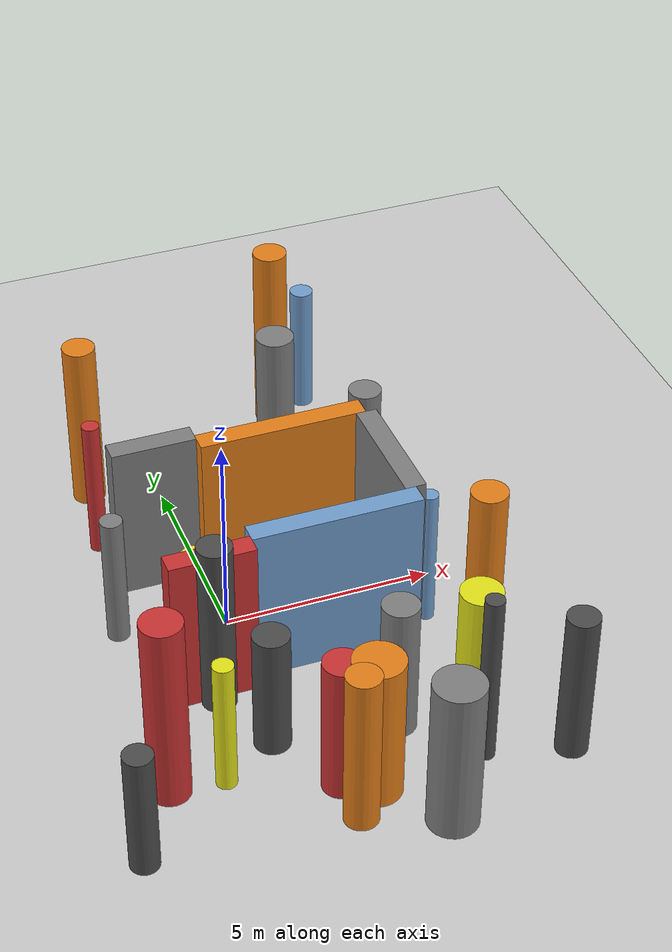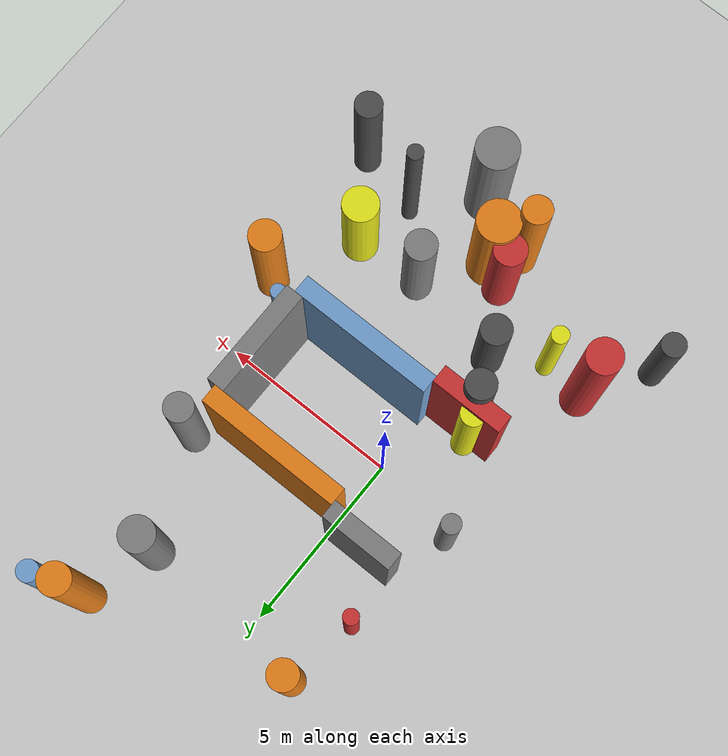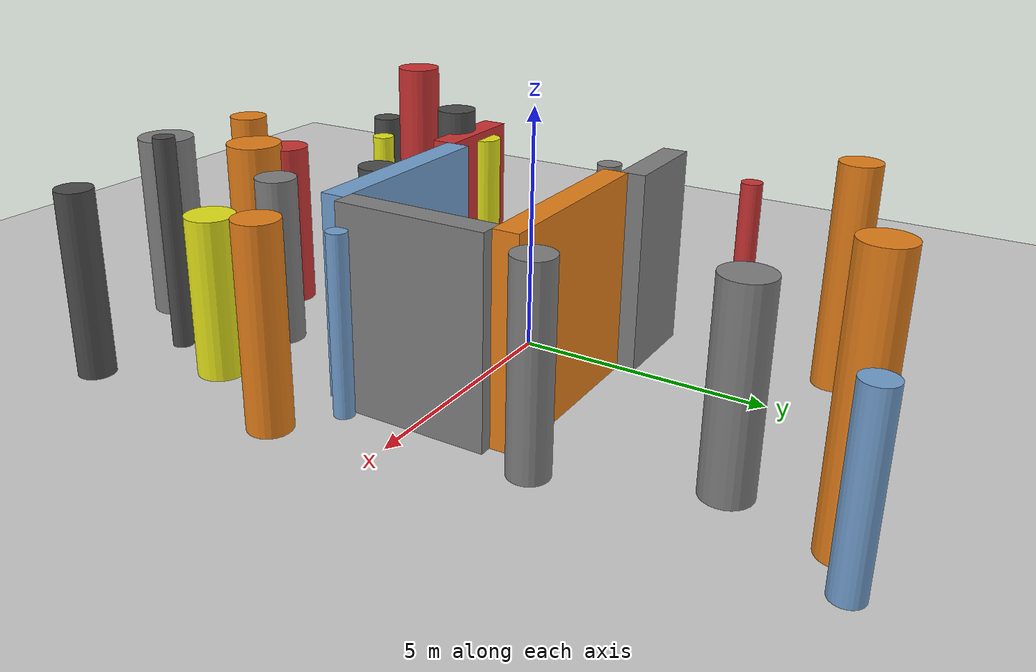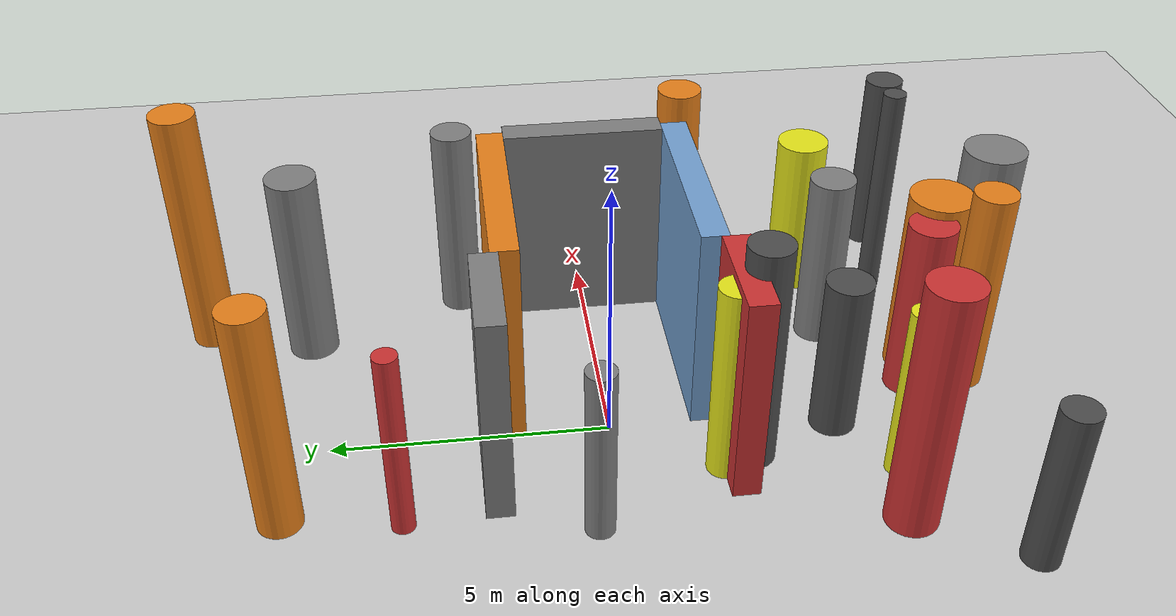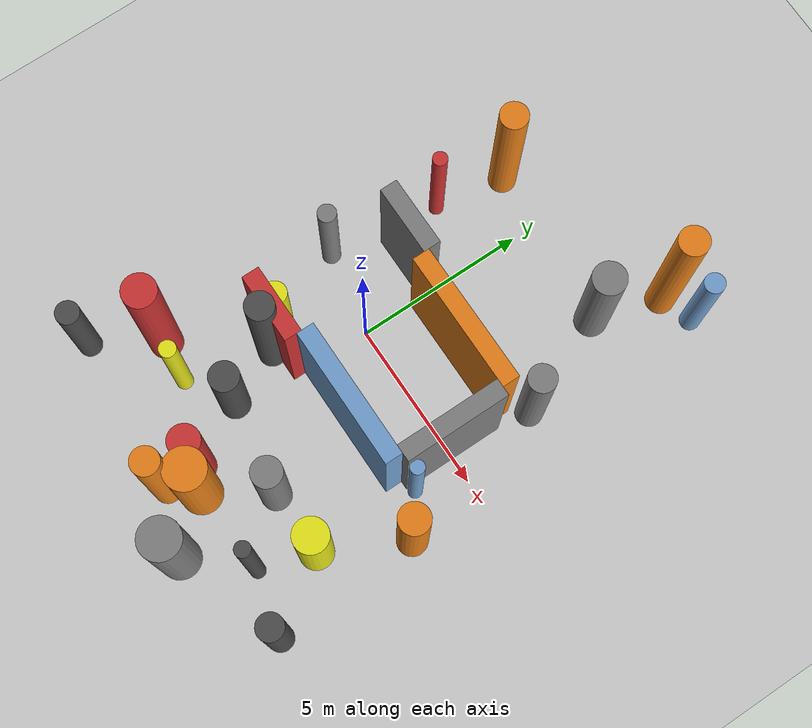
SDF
<?xml version='1.0'?>
<sdf version='1.6'>
  <world name='routeA_rl_v1__dense_recovery__rl_train__cul_de_sac_trap__000033'>
    <!-- Sun light -->
    <light name='sun' type='directional'>
      <cast_shadows>1</cast_shadows>
      <pose>0 0 10 0 0 0</pose>
      <diffuse>0.8 0.8 0.8 1</diffuse>
      <specular>0.2 0.2 0.2 1</specular>
      <attenuation>
        <range>1000</range>
        <constant>0.9</constant>
        <linear>0.01</linear>
        <quadratic>0.001</quadratic>
      </attenuation>
      <direction>-0.5 0.1 -0.9</direction>
    </light>

    <!-- Ground plane -->
    <model name='ground_plane'>
      <static>1</static>
      <link name='link'>
        <collision name='collision'>
          <geometry>
            <plane>
              <normal>0 0 1</normal>
              <size>100 100</size>
            </plane>
          </geometry>
          <surface>
            <contact>
              <collide_bitmask>65535</collide_bitmask>
              <ode/>
            </contact>
            <friction>
              <ode>
                <mu>100</mu>
                <mu2>50</mu2>
              </ode>
              <torsional><ode/></torsional>
            </friction>
            <bounce/>
          </surface>
          <max_contacts>10</max_contacts>
        </collision>
        <visual name='visual'>
          <cast_shadows>0</cast_shadows>
          <geometry>
            <plane>
              <normal>0 0 1</normal>
              <size>100 100</size>
            </plane>
          </geometry>
          <material>
            <script>
              <uri>file://media/materials/scripts/gazebo.material</uri>
              <n>Gazebo/Grey</n>
            </script>
          </material>
        </visual>
      </link>
    </model>

    <!-- Environment -->
    <magnetic_field>6e-06 2.3e-05 -4.2e-05</magnetic_field>
    <atmosphere type='adiabatic'/>
    <physics name='default_physics' default='0' type='ode'>
      <gravity>0 0 -9.8</gravity>
      <max_step_size>0.004</max_step_size>
      <real_time_factor>1</real_time_factor>
      <real_time_update_rate>250</real_time_update_rate>
    </physics>
    <scene>
      <ambient>0.4 0.4 0.4 1</ambient>
      <background>0.7 0.7 0.7 1</background>
      <shadows>1</shadows>
    </scene>
    <wind/>
    <spherical_coordinates>
      <surface_model>EARTH_WGS84</surface_model>
      <latitude_deg>0</latitude_deg>
      <longitude_deg>0</longitude_deg>
      <elevation>0</elevation>
      <heading_deg>0</heading_deg>
    </spherical_coordinates>

    <!-- ============ OBSTACLES (28) ============ -->
    <model name='trap_side_l'>
      <static>1</static>
      <link name='link'>
        <visual name='visual'>
          <geometry>
            <box>
              <size>4.0000 0.5000 4.0000</size>
            </box>
          </geometry>
          <material>
            <script>
              <n>Gazebo/Blue</n>
              <uri>file://media/materials/scripts/gazebo.material</uri>
            </script>
            <ambient>0.447 0.624 0.812 1</ambient>
          </material>
        </visual>
        <collision name='collision'>
          <geometry>
            <box>
              <size>4.0000 0.5000 4.0000</size>
            </box>
          </geometry>
          <max_contacts>10</max_contacts>
          <surface>
            <contact><ode/></contact>
            <bounce/>
            <friction>
              <ode><mu>1</mu><mu2>1</mu2></ode>
              <torsional><ode/></torsional>
            </friction>
          </surface>
        </collision>
      </link>
      <pose>2.0000 -1.7500 2.0000 0 0 0.0000</pose>
    </model>

    <model name='trap_side_r'>
      <static>1</static>
      <link name='link'>
        <visual name='visual'>
          <geometry>
            <box>
              <size>4.0000 0.5000 4.0000</size>
            </box>
          </geometry>
          <material>
            <script>
              <n>Gazebo/Orange</n>
              <uri>file://media/materials/scripts/gazebo.material</uri>
            </script>
            <ambient>0.9 0.5 0.1 1</ambient>
          </material>
        </visual>
        <collision name='collision'>
          <geometry>
            <box>
              <size>4.0000 0.5000 4.0000</size>
            </box>
          </geometry>
          <max_contacts>10</max_contacts>
          <surface>
            <contact><ode/></contact>
            <bounce/>
            <friction>
              <ode><mu>1</mu><mu2>1</mu2></ode>
              <torsional><ode/></torsional>
            </friction>
          </surface>
        </collision>
      </link>
      <pose>2.0000 1.7500 2.0000 0 0 0.0000</pose>
    </model>

    <model name='trap_back'>
      <static>1</static>
      <link name='link'>
        <visual name='visual'>
          <geometry>
            <box>
              <size>0.5000 3.0000 4.0000</size>
            </box>
          </geometry>
          <material>
            <script>
              <n>Gazebo/Grey</n>
              <uri>file://media/materials/scripts/gazebo.material</uri>
            </script>
            <ambient>0.5 0.5 0.5 1</ambient>
          </material>
        </visual>
        <collision name='collision'>
          <geometry>
            <box>
              <size>0.5000 3.0000 4.0000</size>
            </box>
          </geometry>
          <max_contacts>10</max_contacts>
          <surface>
            <contact><ode/></contact>
            <bounce/>
            <friction>
              <ode><mu>1</mu><mu2>1</mu2></ode>
              <torsional><ode/></torsional>
            </friction>
          </surface>
        </collision>
      </link>
      <pose>4.0000 0.0000 2.0000 0 0 0.0000</pose>
    </model>

    <model name='trap_funnel_l'>
      <static>1</static>
      <link name='link'>
        <visual name='visual'>
          <geometry>
            <box>
              <size>2.0000 0.5000 4.0000</size>
            </box>
          </geometry>
          <material>
            <script>
              <n>Gazebo/Red</n>
              <uri>file://media/materials/scripts/gazebo.material</uri>
            </script>
            <ambient>0.8 0.2 0.2 1</ambient>
          </material>
        </visual>
        <collision name='collision'>
          <geometry>
            <box>
              <size>2.0000 0.5000 4.0000</size>
            </box>
          </geometry>
          <max_contacts>10</max_contacts>
          <surface>
            <contact><ode/></contact>
            <bounce/>
            <friction>
              <ode><mu>1</mu><mu2>1</mu2></ode>
              <torsional><ode/></torsional>
            </friction>
          </surface>
        </collision>
      </link>
      <pose>-1.0000 -2.1000 2.0000 0 0 0.0000</pose>
    </model>

    <model name='trap_funnel_r'>
      <static>1</static>
      <link name='link'>
        <visual name='visual'>
          <geometry>
            <box>
              <size>2.0000 0.5000 4.0000</size>
            </box>
          </geometry>
          <material>
            <script>
              <n>Gazebo/Grey</n>
              <uri>file://media/materials/scripts/gazebo.material</uri>
            </script>
            <ambient>0.5 0.5 0.5 1</ambient>
          </material>
        </visual>
        <collision name='collision'>
          <geometry>
            <box>
              <size>2.0000 0.5000 4.0000</size>
            </box>
          </geometry>
          <max_contacts>10</max_contacts>
          <surface>
            <contact><ode/></contact>
            <bounce/>
            <friction>
              <ode><mu>1</mu><mu2>1</mu2></ode>
              <torsional><ode/></torsional>
            </friction>
          </surface>
        </collision>
      </link>
      <pose>-1.0000 2.1000 2.0000 0 0 0.0000</pose>
    </model>

    <model name='trap_scatter_0'>
      <static>1</static>
      <link name='link'>
        <visual name='visual'>
          <geometry>
            <cylinder>
              <radius>0.2383</radius>
              <length>3.3744</length>
            </cylinder>
          </geometry>
          <material>
            <script>
              <n>Gazebo/Yellow</n>
              <uri>file://media/materials/scripts/gazebo.material</uri>
            </script>
            <ambient>0.9 0.9 0.1 1</ambient>
          </material>
        </visual>
        <collision name='collision'>
          <geometry>
            <cylinder>
              <radius>0.2383</radius>
              <length>3.3744</length>
            </cylinder>
          </geometry>
          <max_contacts>10</max_contacts>
          <surface>
            <contact><ode/></contact>
            <bounce/>
            <friction>
              <ode><mu>1</mu><mu2>1</mu2></ode>
              <torsional><ode/></torsional>
            </friction>
          </surface>
        </collision>
      </link>
      <pose>-1.6503 -4.8730 1.6872 0 0 0.0000</pose>
    </model>

    <model name='trap_scatter_1'>
      <static>1</static>
      <link name='link'>
        <visual name='visual'>
          <geometry>
            <cylinder>
              <radius>0.5872</radius>
              <length>3.6845</length>
            </cylinder>
          </geometry>
          <material>
            <script>
              <n>Gazebo/Orange</n>
              <uri>file://media/materials/scripts/gazebo.material</uri>
            </script>
            <ambient>0.9 0.5 0.1 1</ambient>
          </material>
        </visual>
        <collision name='collision'>
          <geometry>
            <cylinder>
              <radius>0.5872</radius>
              <length>3.6845</length>
            </cylinder>
          </geometry>
          <max_contacts>10</max_contacts>
          <surface>
            <contact><ode/></contact>
            <bounce/>
            <friction>
              <ode><mu>1</mu><mu2>1</mu2></ode>
              <torsional><ode/></torsional>
            </friction>
          </surface>
        </collision>
      </link>
      <pose>1.2761 -6.1486 1.8422 0 0 0.0000</pose>
    </model>

    <model name='trap_scatter_2'>
      <static>1</static>
      <link name='link'>
        <visual name='visual'>
          <geometry>
            <cylinder>
              <radius>0.2081</radius>
              <length>3.5965</length>
            </cylinder>
          </geometry>
          <material>
            <script>
              <n>Gazebo/Red</n>
              <uri>file://media/materials/scripts/gazebo.material</uri>
            </script>
            <ambient>0.8 0.2 0.2 1</ambient>
          </material>
        </visual>
        <collision name='collision'>
          <geometry>
            <cylinder>
              <radius>0.2081</radius>
              <length>3.5965</length>
            </cylinder>
          </geometry>
          <max_contacts>10</max_contacts>
          <surface>
            <contact><ode/></contact>
            <bounce/>
            <friction>
              <ode><mu>1</mu><mu2>1</mu2></ode>
              <torsional><ode/></torsional>
            </friction>
          </surface>
        </collision>
      </link>
      <pose>-1.9865 3.7169 1.7983 0 0 0.0000</pose>
    </model>

    <model name='trap_scatter_5'>
      <static>1</static>
      <link name='link'>
        <visual name='visual'>
          <geometry>
            <cylinder>
              <radius>0.4340</radius>
              <length>3.9326</length>
            </cylinder>
          </geometry>
          <material>
            <script>
              <n>Gazebo/Orange</n>
              <uri>file://media/materials/scripts/gazebo.material</uri>
            </script>
            <ambient>0.9 0.5 0.1 1</ambient>
          </material>
        </visual>
        <collision name='collision'>
          <geometry>
            <cylinder>
              <radius>0.4340</radius>
              <length>3.9326</length>
            </cylinder>
          </geometry>
          <max_contacts>10</max_contacts>
          <surface>
            <contact><ode/></contact>
            <bounce/>
            <friction>
              <ode><mu>1</mu><mu2>1</mu2></ode>
              <torsional><ode/></torsional>
            </friction>
          </surface>
        </collision>
      </link>
      <pose>5.4922 -2.1529 1.9663 0 0 0.0000</pose>
    </model>

    <model name='trap_scatter_6'>
      <static>1</static>
      <link name='link'>
        <visual name='visual'>
          <geometry>
            <cylinder>
              <radius>0.4016</radius>
              <length>4.4435</length>
            </cylinder>
          </geometry>
          <material>
            <script>
              <n>Gazebo/DarkGrey</n>
              <uri>file://media/materials/scripts/gazebo.material</uri>
            </script>
            <ambient>0.3 0.3 0.3 1</ambient>
          </material>
        </visual>
        <collision name='collision'>
          <geometry>
            <cylinder>
              <radius>0.4016</radius>
              <length>4.4435</length>
            </cylinder>
          </geometry>
          <max_contacts>10</max_contacts>
          <surface>
            <contact><ode/></contact>
            <bounce/>
            <friction>
              <ode><mu>1</mu><mu2>1</mu2></ode>
              <torsional><ode/></torsional>
            </friction>
          </surface>
        </collision>
      </link>
      <pose>-0.9883 -2.4253 2.2217 0 0 0.0000</pose>
    </model>

    <model name='trap_scatter_7'>
      <static>1</static>
      <link name='link'>
        <visual name='visual'>
          <geometry>
            <cylinder>
              <radius>0.3899</radius>
              <length>3.8923</length>
            </cylinder>
          </geometry>
          <material>
            <script>
              <n>Gazebo/Grey</n>
              <uri>file://media/materials/scripts/gazebo.material</uri>
            </script>
            <ambient>0.5 0.5 0.5 1</ambient>
          </material>
        </visual>
        <collision name='collision'>
          <geometry>
            <cylinder>
              <radius>0.3899</radius>
              <length>3.8923</length>
            </cylinder>
          </geometry>
          <max_contacts>10</max_contacts>
          <surface>
            <contact><ode/></contact>
            <bounce/>
            <friction>
              <ode><mu>1</mu><mu2>1</mu2></ode>
              <torsional><ode/></torsional>
            </friction>
          </surface>
        </collision>
      </link>
      <pose>4.3533 2.4633 1.9462 0 0 0.0000</pose>
    </model>

    <model name='trap_scatter_8'>
      <static>1</static>
      <link name='link'>
        <visual name='visual'>
          <geometry>
            <cylinder>
              <radius>0.4180</radius>
              <length>4.9132</length>
            </cylinder>
          </geometry>
          <material>
            <script>
              <n>Gazebo/Orange</n>
              <uri>file://media/materials/scripts/gazebo.material</uri>
            </script>
            <ambient>0.9 0.5 0.1 1</ambient>
          </material>
        </visual>
        <collision name='collision'>
          <geometry>
            <cylinder>
              <radius>0.4180</radius>
              <length>4.9132</length>
            </cylinder>
          </geometry>
          <max_contacts>10</max_contacts>
          <surface>
            <contact><ode/></contact>
            <bounce/>
            <friction>
              <ode><mu>1</mu><mu2>1</mu2></ode>
              <torsional><ode/></torsional>
            </friction>
          </surface>
        </collision>
      </link>
      <pose>3.7352 7.3650 2.4566 0 0 0.0000</pose>
    </model>

    <model name='trap_scatter_9'>
      <static>1</static>
      <link name='link'>
        <visual name='visual'>
          <geometry>
            <cylinder>
              <radius>0.4281</radius>
              <length>3.4770</length>
            </cylinder>
          </geometry>
          <material>
            <script>
              <n>Gazebo/Grey</n>
              <uri>file://media/materials/scripts/gazebo.material</uri>
            </script>
            <ambient>0.5 0.5 0.5 1</ambient>
          </material>
        </visual>
        <collision name='collision'>
          <geometry>
            <cylinder>
              <radius>0.4281</radius>
              <length>3.4770</length>
            </cylinder>
          </geometry>
          <max_contacts>10</max_contacts>
          <surface>
            <contact><ode/></contact>
            <bounce/>
            <friction>
              <ode><mu>1</mu><mu2>1</mu2></ode>
              <torsional><ode/></torsional>
            </friction>
          </surface>
        </collision>
      </link>
      <pose>2.4327 -4.5046 1.7385 0 0 0.0000</pose>
    </model>

    <model name='trap_scatter_10'>
      <static>1</static>
      <link name='link'>
        <visual name='visual'>
          <geometry>
            <cylinder>
              <radius>0.2883</radius>
              <length>3.3798</length>
            </cylinder>
          </geometry>
          <material>
            <script>
              <n>Gazebo/Blue</n>
              <uri>file://media/materials/scripts/gazebo.material</uri>
            </script>
            <ambient>0.447 0.624 0.812 1</ambient>
          </material>
        </visual>
        <collision name='collision'>
          <geometry>
            <cylinder>
              <radius>0.2883</radius>
              <length>3.3798</length>
            </cylinder>
          </geometry>
          <max_contacts>10</max_contacts>
          <surface>
            <contact><ode/></contact>
            <bounce/>
            <friction>
              <ode><mu>1</mu><mu2>1</mu2></ode>
              <torsional><ode/></torsional>
            </friction>
          </surface>
        </collision>
      </link>
      <pose>4.6838 7.6950 1.6899 0 0 0.0000</pose>
    </model>

    <model name='trap_scatter_11'>
      <static>1</static>
      <link name='link'>
        <visual name='visual'>
          <geometry>
            <cylinder>
              <radius>0.3963</radius>
              <length>4.4027</length>
            </cylinder>
          </geometry>
          <material>
            <script>
              <n>Gazebo/Orange</n>
              <uri>file://media/materials/scripts/gazebo.material</uri>
            </script>
            <ambient>0.9 0.5 0.1 1</ambient>
          </material>
        </visual>
        <collision name='collision'>
          <geometry>
            <cylinder>
              <radius>0.3963</radius>
              <length>4.4027</length>
            </cylinder>
          </geometry>
          <max_contacts>10</max_contacts>
          <surface>
            <contact><ode/></contact>
            <bounce/>
            <friction>
              <ode><mu>1</mu><mu2>1</mu2></ode>
              <torsional><ode/></torsional>
            </friction>
          </surface>
        </collision>
      </link>
      <pose>-1.6442 5.7545 2.2014 0 0 0.0000</pose>
    </model>

    <model name='trap_scatter_12'>
      <static>1</static>
      <link name='link'>
        <visual name='visual'>
          <geometry>
            <cylinder>
              <radius>0.2619</radius>
              <length>3.3485</length>
            </cylinder>
          </geometry>
          <material>
            <script>
              <n>Gazebo/Grey</n>
              <uri>file://media/materials/scripts/gazebo.material</uri>
            </script>
            <ambient>0.5 0.5 0.5 1</ambient>
          </material>
        </visual>
        <collision name='collision'>
          <geometry>
            <cylinder>
              <radius>0.2619</radius>
              <length>3.3485</length>
            </cylinder>
          </geometry>
          <max_contacts>10</max_contacts>
          <surface>
            <contact><ode/></contact>
            <bounce/>
            <friction>
              <ode><mu>1</mu><mu2>1</mu2></ode>
              <torsional><ode/></torsional>
            </friction>
          </surface>
        </collision>
      </link>
      <pose>-2.4542 0.4838 1.6742 0 0 0.0000</pose>
    </model>

    <model name='trap_scatter_13'>
      <static>1</static>
      <link name='link'>
        <visual name='visual'>
          <geometry>
            <cylinder>
              <radius>0.3299</radius>
              <length>3.8443</length>
            </cylinder>
          </geometry>
          <material>
            <script>
              <n>Gazebo/Yellow</n>
              <uri>file://media/materials/scripts/gazebo.material</uri>
            </script>
            <ambient>0.9 0.9 0.1 1</ambient>
          </material>
        </visual>
        <collision name='collision'>
          <geometry>
            <cylinder>
              <radius>0.3299</radius>
              <length>3.8443</length>
            </cylinder>
          </geometry>
          <max_contacts>10</max_contacts>
          <surface>
            <contact><ode/></contact>
            <bounce/>
            <friction>
              <ode><mu>1</mu><mu2>1</mu2></ode>
              <torsional><ode/></torsional>
            </friction>
          </surface>
        </collision>
      </link>
      <pose>-1.2377 -1.8711 1.9222 0 0 0.0000</pose>
    </model>

    <model name='trap_scatter_14'>
      <static>1</static>
      <link name='link'>
        <visual name='visual'>
          <geometry>
            <cylinder>
              <radius>0.4697</radius>
              <length>3.8099</length>
            </cylinder>
          </geometry>
          <material>
            <script>
              <n>Gazebo/Grey</n>
              <uri>file://media/materials/scripts/gazebo.material</uri>
            </script>
            <ambient>0.5 0.5 0.5 1</ambient>
          </material>
        </visual>
        <collision name='collision'>
          <geometry>
            <cylinder>
              <radius>0.4697</radius>
              <length>3.8099</length>
            </cylinder>
          </geometry>
          <max_contacts>10</max_contacts>
          <surface>
            <contact><ode/></contact>
            <bounce/>
            <friction>
              <ode><mu>1</mu><mu2>1</mu2></ode>
              <torsional><ode/></torsional>
            </friction>
          </surface>
        </collision>
      </link>
      <pose>3.1558 5.4042 1.9049 0 0 0.0000</pose>
    </model>

    <model name='trap_scatter_15'>
      <static>1</static>
      <link name='link'>
        <visual name='visual'>
          <geometry>
            <cylinder>
              <radius>0.3323</radius>
              <length>3.1338</length>
            </cylinder>
          </geometry>
          <material>
            <script>
              <n>Gazebo/DarkGrey</n>
              <uri>file://media/materials/scripts/gazebo.material</uri>
            </script>
            <ambient>0.3 0.3 0.3 1</ambient>
          </material>
        </visual>
        <collision name='collision'>
          <geometry>
            <cylinder>
              <radius>0.3323</radius>
              <length>3.1338</length>
            </cylinder>
          </geometry>
          <max_contacts>10</max_contacts>
          <surface>
            <contact><ode/></contact>
            <bounce/>
            <friction>
              <ode><mu>1</mu><mu2>1</mu2></ode>
              <torsional><ode/></torsional>
            </friction>
          </surface>
        </collision>
      </link>
      <pose>-3.9762 -6.4980 1.5669 0 0 0.0000</pose>
    </model>

    <model name='trap_scatter_16'>
      <static>1</static>
      <link name='link'>
        <visual name='visual'>
          <geometry>
            <cylinder>
              <radius>0.5820</radius>
              <length>3.8787</length>
            </cylinder>
          </geometry>
          <material>
            <script>
              <n>Gazebo/Grey</n>
              <uri>file://media/materials/scripts/gazebo.material</uri>
            </script>
            <ambient>0.5 0.5 0.5 1</ambient>
          </material>
        </visual>
        <collision name='collision'>
          <geometry>
            <cylinder>
              <radius>0.5820</radius>
              <length>3.8787</length>
            </cylinder>
          </geometry>
          <max_contacts>10</max_contacts>
          <surface>
            <contact><ode/></contact>
            <bounce/>
            <friction>
              <ode><mu>1</mu><mu2>1</mu2></ode>
              <torsional><ode/></torsional>
            </friction>
          </surface>
        </collision>
      </link>
      <pose>2.4419 -7.5584 1.9393 0 0 0.0000</pose>
    </model>

    <model name='trap_scatter_17'>
      <static>1</static>
      <link name='link'>
        <visual name='visual'>
          <geometry>
            <cylinder>
              <radius>0.2004</radius>
              <length>3.5403</length>
            </cylinder>
          </geometry>
          <material>
            <script>
              <n>Gazebo/Blue</n>
              <uri>file://media/materials/scripts/gazebo.material</uri>
            </script>
            <ambient>0.447 0.624 0.812 1</ambient>
          </material>
        </visual>
        <collision name='collision'>
          <geometry>
            <cylinder>
              <radius>0.2004</radius>
              <length>3.5403</length>
            </cylinder>
          </geometry>
          <max_contacts>10</max_contacts>
          <surface>
            <contact><ode/></contact>
            <bounce/>
            <friction>
              <ode><mu>1</mu><mu2>1</mu2></ode>
              <torsional><ode/></torsional>
            </friction>
          </surface>
        </collision>
      </link>
      <pose>4.4221 -1.3350 1.7702 0 0 0.0000</pose>
    </model>

    <model name='trap_scatter_18'>
      <static>1</static>
      <link name='link'>
        <visual name='visual'>
          <geometry>
            <cylinder>
              <radius>0.2185</radius>
              <length>4.4042</length>
            </cylinder>
          </geometry>
          <material>
            <script>
              <n>Gazebo/DarkGrey</n>
              <uri>file://media/materials/scripts/gazebo.material</uri>
            </script>
            <ambient>0.3 0.3 0.3 1</ambient>
          </material>
        </visual>
        <collision name='collision'>
          <geometry>
            <cylinder>
              <radius>0.2185</radius>
              <length>4.4042</length>
            </cylinder>
          </geometry>
          <max_contacts>10</max_contacts>
          <surface>
            <contact><ode/></contact>
            <bounce/>
            <friction>
              <ode><mu>1</mu><mu2>1</mu2></ode>
              <torsional><ode/></torsional>
            </friction>
          </surface>
        </collision>
      </link>
      <pose>3.8666 -6.0159 2.2021 0 0 0.0000</pose>
    </model>

    <model name='trap_scatter_19'>
      <static>1</static>
      <link name='link'>
        <visual name='visual'>
          <geometry>
            <cylinder>
              <radius>0.4710</radius>
              <length>4.7812</length>
            </cylinder>
          </geometry>
          <material>
            <script>
              <n>Gazebo/Red</n>
              <uri>file://media/materials/scripts/gazebo.material</uri>
            </script>
            <ambient>0.8 0.2 0.2 1</ambient>
          </material>
        </visual>
        <collision name='collision'>
          <geometry>
            <cylinder>
              <radius>0.4710</radius>
              <length>4.7812</length>
            </cylinder>
          </geometry>
          <max_contacts>10</max_contacts>
          <surface>
            <contact><ode/></contact>
            <bounce/>
            <friction>
              <ode><mu>1</mu><mu2>1</mu2></ode>
              <torsional><ode/></torsional>
            </friction>
          </surface>
        </collision>
      </link>
      <pose>-2.8625 -4.7066 2.3906 0 0 0.0000</pose>
    </model>

    <model name='trap_scatter_20'>
      <static>1</static>
      <link name='link'>
        <visual name='visual'>
          <geometry>
            <cylinder>
              <radius>0.4212</radius>
              <length>3.1097</length>
            </cylinder>
          </geometry>
          <material>
            <script>
              <n>Gazebo/DarkGrey</n>
              <uri>file://media/materials/scripts/gazebo.material</uri>
            </script>
            <ambient>0.3 0.3 0.3 1</ambient>
          </material>
        </visual>
        <collision name='collision'>
          <geometry>
            <cylinder>
              <radius>0.4212</radius>
              <length>3.1097</length>
            </cylinder>
          </geometry>
          <max_contacts>10</max_contacts>
          <surface>
            <contact><ode/></contact>
            <bounce/>
            <friction>
              <ode><mu>1</mu><mu2>1</mu2></ode>
              <torsional><ode/></torsional>
            </friction>
          </surface>
        </collision>
      </link>
      <pose>-0.3190 -4.0604 1.5548 0 0 0.0000</pose>
    </model>

    <model name='trap_scatter_21'>
      <static>1</static>
      <link name='link'>
        <visual name='visual'>
          <geometry>
            <cylinder>
              <radius>0.3717</radius>
              <length>3.7657</length>
            </cylinder>
          </geometry>
          <material>
            <script>
              <n>Gazebo/DarkGrey</n>
              <uri>file://media/materials/scripts/gazebo.material</uri>
            </script>
            <ambient>0.3 0.3 0.3 1</ambient>
          </material>
        </visual>
        <collision name='collision'>
          <geometry>
            <cylinder>
              <radius>0.3717</radius>
              <length>3.7657</length>
            </cylinder>
          </geometry>
          <max_contacts>10</max_contacts>
          <surface>
            <contact><ode/></contact>
            <bounce/>
            <friction>
              <ode><mu>1</mu><mu2>1</mu2></ode>
              <torsional><ode/></torsional>
            </friction>
          </surface>
        </collision>
      </link>
      <pose>5.7053 -6.4800 1.8829 0 0 0.0000</pose>
    </model>

    <model name='trap_scatter_22'>
      <static>1</static>
      <link name='link'>
        <visual name='visual'>
          <geometry>
            <cylinder>
              <radius>0.3956</radius>
              <length>4.0569</length>
            </cylinder>
          </geometry>
          <material>
            <script>
              <n>Gazebo/Orange</n>
              <uri>file://media/materials/scripts/gazebo.material</uri>
            </script>
            <ambient>0.9 0.5 0.1 1</ambient>
          </material>
        </visual>
        <collision name='collision'>
          <geometry>
            <cylinder>
              <radius>0.3956</radius>
              <length>4.0569</length>
            </cylinder>
          </geometry>
          <max_contacts>10</max_contacts>
          <surface>
            <contact><ode/></contact>
            <bounce/>
            <friction>
              <ode><mu>1</mu><mu2>1</mu2></ode>
              <torsional><ode/></torsional>
            </friction>
          </surface>
        </collision>
      </link>
      <pose>0.6632 -6.8465 2.0284 0 0 0.0000</pose>
    </model>

    <model name='trap_scatter_23'>
      <static>1</static>
      <link name='link'>
        <visual name='visual'>
          <geometry>
            <cylinder>
              <radius>0.4910</radius>
              <length>3.2373</length>
            </cylinder>
          </geometry>
          <material>
            <script>
              <n>Gazebo/Yellow</n>
              <uri>file://media/materials/scripts/gazebo.material</uri>
            </script>
            <ambient>0.9 0.9 0.1 1</ambient>
          </material>
        </visual>
        <collision name='collision'>
          <geometry>
            <cylinder>
              <radius>0.4910</radius>
              <length>3.2373</length>
            </cylinder>
          </geometry>
          <max_contacts>10</max_contacts>
          <surface>
            <contact><ode/></contact>
            <bounce/>
            <friction>
              <ode><mu>1</mu><mu2>1</mu2></ode>
              <torsional><ode/></torsional>
            </friction>
          </surface>
        </collision>
      </link>
      <pose>4.3269 -4.4513 1.6187 0 0 0.0000</pose>
    </model>

    <model name='trap_scatter_24'>
      <static>1</static>
      <link name='link'>
        <visual name='visual'>
          <geometry>
            <cylinder>
              <radius>0.4452</radius>
              <length>3.5200</length>
            </cylinder>
          </geometry>
          <material>
            <script>
              <n>Gazebo/Red</n>
              <uri>file://media/materials/scripts/gazebo.material</uri>
            </script>
            <ambient>0.8 0.2 0.2 1</ambient>
          </material>
        </visual>
        <collision name='collision'>
          <geometry>
            <cylinder>
              <radius>0.4452</radius>
              <length>3.5200</length>
            </cylinder>
          </geometry>
          <max_contacts>10</max_contacts>
          <surface>
            <contact><ode/></contact>
            <bounce/>
            <friction>
              <ode><mu>1</mu><mu2>1</mu2></ode>
              <torsional><ode/></torsional>
            </friction>
          </surface>
        </collision>
      </link>
      <pose>0.6252 -5.7876 1.7600 0 0 0.0000</pose>
    </model>

    <!-- GUI camera -->
    <gui fullscreen='0'>
      <camera name='user_camera'>
        <pose>-15 0 18 0 0.85 0.15</pose>
        <view_controller>orbit</view_controller>
        <projection_type>perspective</projection_type>
      </camera>
    </gui>
  </world>
</sdf>
